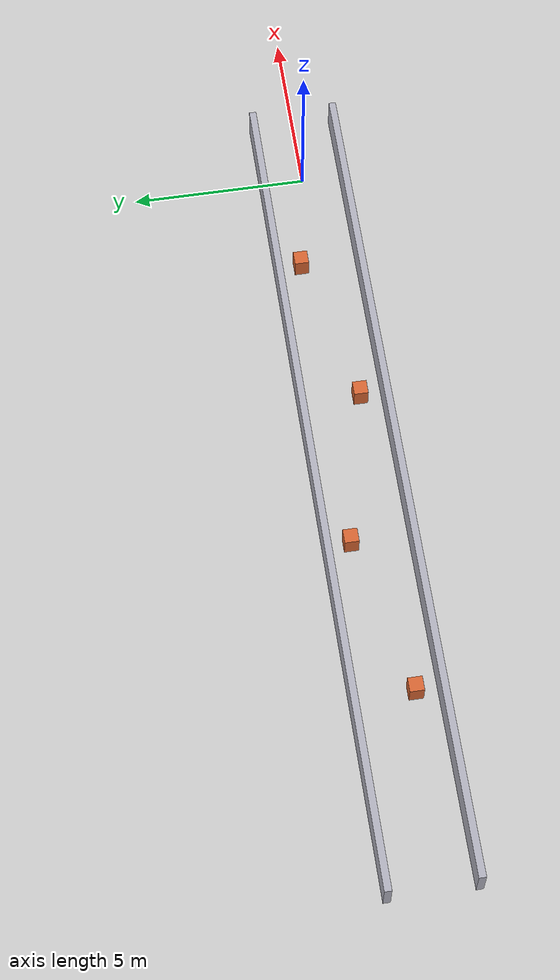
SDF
<?xml version="1.0" ?>
<sdf version="1.5">
  <world name="default">
    <include>
      <uri>model://sun</uri>
    </include>
    <include>
      <uri>model://ground_plane</uri>
    </include>

    <model name="wall_left">
      <static>true</static>
      <pose>-10.0 1.2 0.5 0 0 0</pose>
      <link name="link">
        <collision name="collision">
          <geometry><box><size>24.0 0.2 1.0</size></box></geometry>
        </collision>
        <visual name="visual">
          <geometry><box><size>24.0 0.2 1.0</size></box></geometry>
          <material><ambient>0.7 0.7 0.75 1</ambient><diffuse>0.7 0.7 0.75 1</diffuse></material>
        </visual>
      </link>
    </model>

    <model name="wall_right">
      <static>true</static>
      <pose>-10.0 -1.2 0.5 0 0 0</pose>
      <link name="link">
        <collision name="collision">
          <geometry><box><size>24.0 0.2 1.0</size></box></geometry>
        </collision>
        <visual name="visual">
          <geometry><box><size>24.0 0.2 1.0</size></box></geometry>
          <material><ambient>0.7 0.7 0.75 1</ambient><diffuse>0.7 0.7 0.75 1</diffuse></material>
        </visual>
      </link>
    </model>

    <model name="obstacle_0">
      <static>true</static>
      <pose>-3.0 0.5 0.3 0 0 0</pose>
      <link name="link">
        <collision name="collision">
          <geometry><box><size>0.4 0.4 0.6</size></box></geometry>
        </collision>
        <visual name="visual">
          <geometry><box><size>0.4 0.4 0.6</size></box></geometry>
          <material><ambient>0.85 0.4 0.2 1</ambient><diffuse>0.85 0.4 0.2 1</diffuse></material>
        </visual>
      </link>
    </model>

    <model name="obstacle_1">
      <static>true</static>
      <pose>-7.5 -0.5 0.3 0 0 0</pose>
      <link name="link">
        <collision name="collision">
          <geometry><box><size>0.4 0.4 0.6</size></box></geometry>
        </collision>
        <visual name="visual">
          <geometry><box><size>0.4 0.4 0.6</size></box></geometry>
          <material><ambient>0.85 0.4 0.2 1</ambient><diffuse>0.85 0.4 0.2 1</diffuse></material>
        </visual>
      </link>
    </model>

    <model name="obstacle_2">
      <static>true</static>
      <pose>-12.0 0.5 0.3 0 0 0</pose>
      <link name="link">
        <collision name="collision">
          <geometry><box><size>0.4 0.4 0.6</size></box></geometry>
        </collision>
        <visual name="visual">
          <geometry><box><size>0.4 0.4 0.6</size></box></geometry>
          <material><ambient>0.85 0.4 0.2 1</ambient><diffuse>0.85 0.4 0.2 1</diffuse></material>
        </visual>
      </link>
    </model>

    <model name="obstacle_3">
      <static>true</static>
      <pose>-16.5 -0.5 0.3 0 0 0</pose>
      <link name="link">
        <collision name="collision">
          <geometry><box><size>0.4 0.4 0.6</size></box></geometry>
        </collision>
        <visual name="visual">
          <geometry><box><size>0.4 0.4 0.6</size></box></geometry>
          <material><ambient>0.85 0.4 0.2 1</ambient><diffuse>0.85 0.4 0.2 1</diffuse></material>
        </visual>
      </link>
    </model>
  </world>
</sdf>
